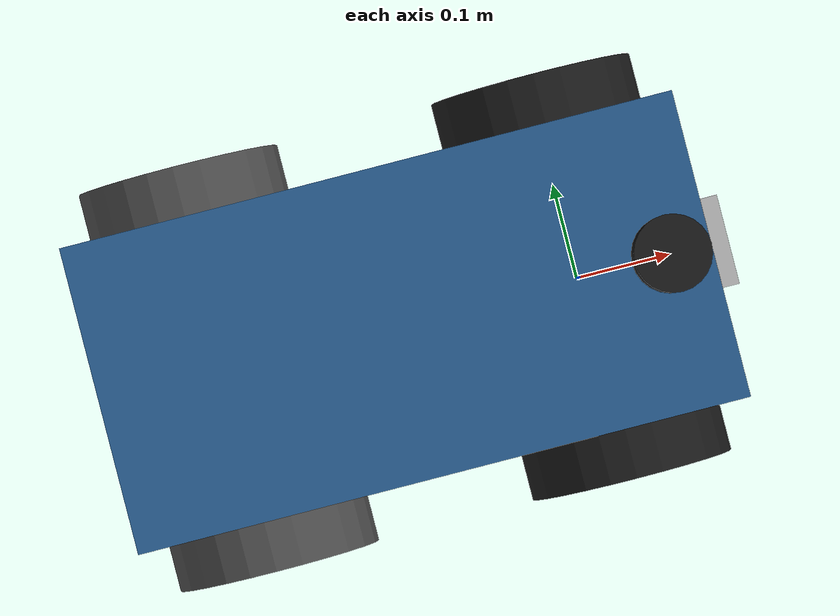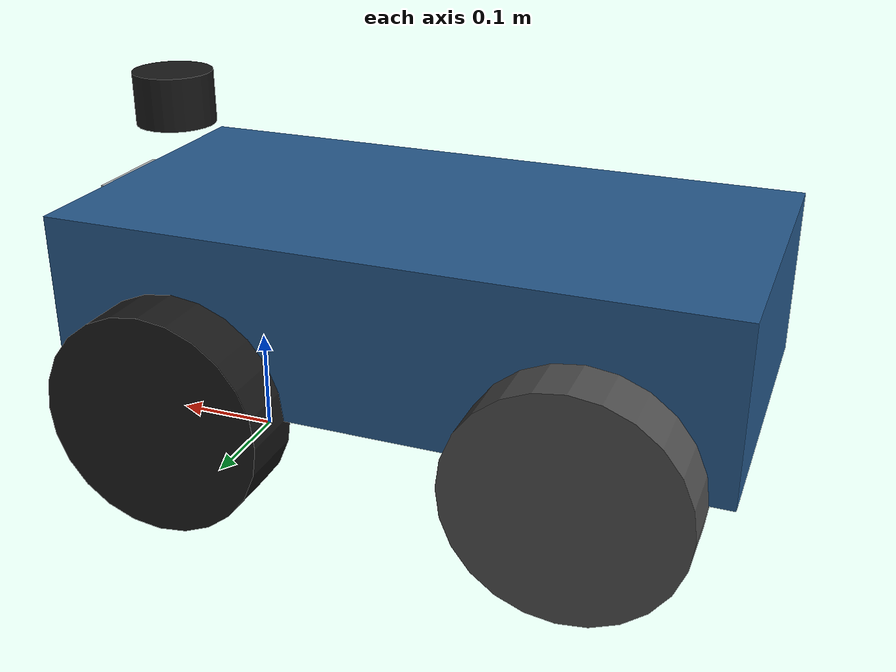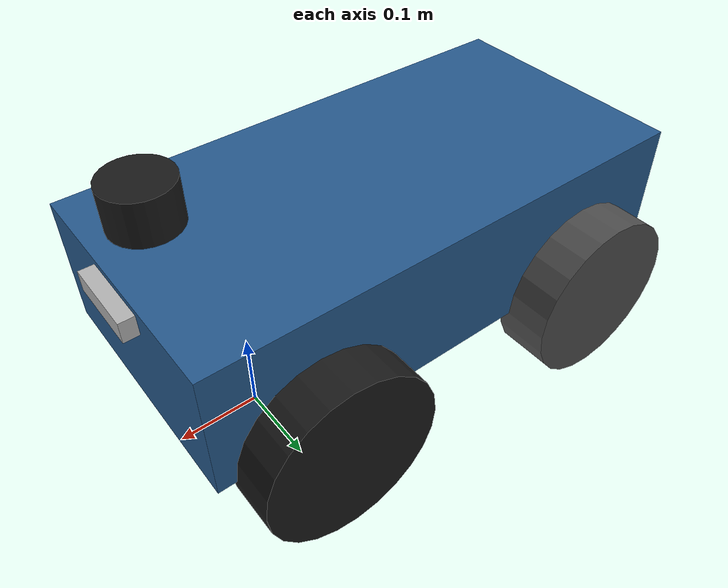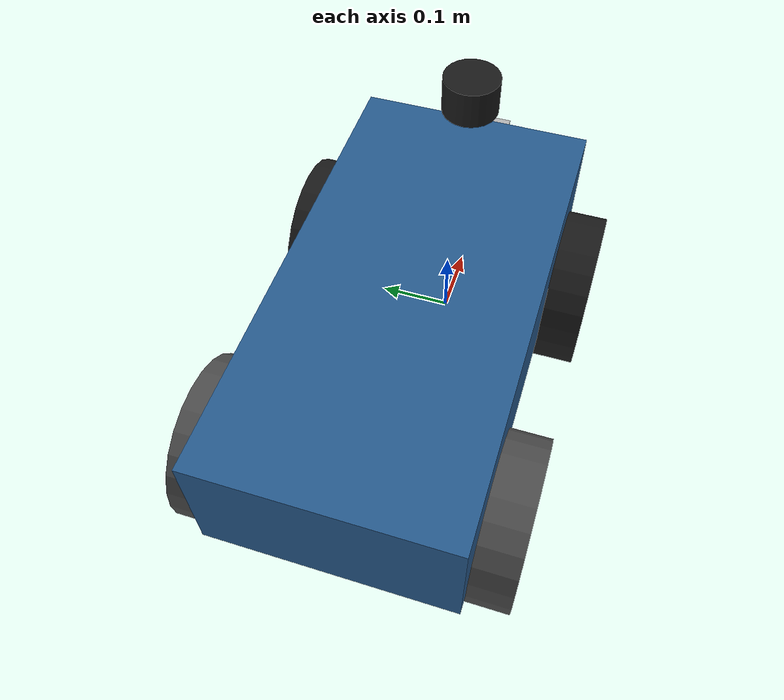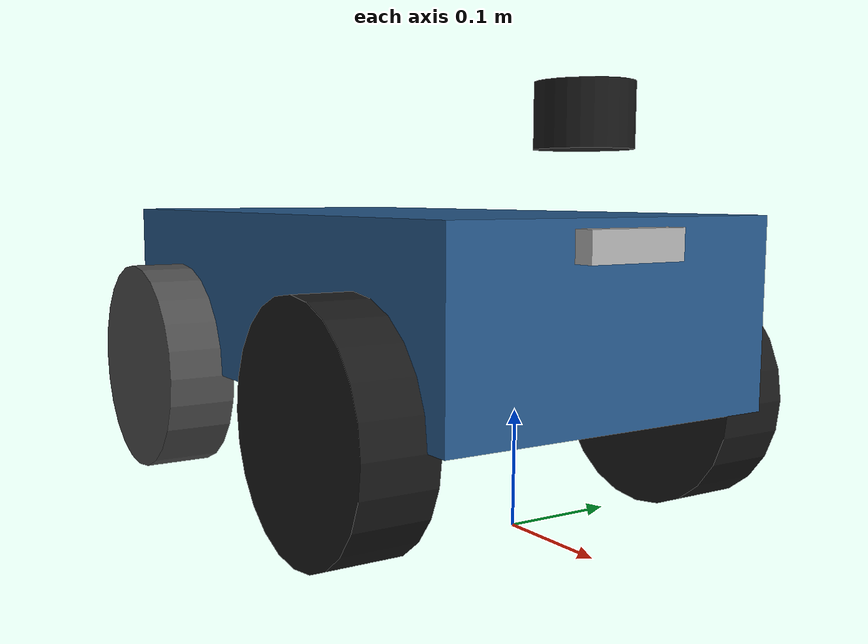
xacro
<?xml version="1.0"?>
<robot xmlns:xacro="http://www.ros.org/wiki/xacro" name="wheeltec_ugv">

  <!-- Xacro Arguments (ADR-0001: Heading defined in software)                   -->
  <xacro:arg name="heading" default="drive_front"/> <!-- "drive_front" or "omni_front" -->

  <!-- Geometry Properties -->
  <xacro:property name="track_width" value="0.350"/>
  <xacro:property name="wheel_radius" value="0.104"/>
  <xacro:property name="wheel_width" value="0.065"/>
  <xacro:property name="wheelbase" value="0.370"/>
  <xacro:property name="chassis_length" value="0.620"/>
  <xacro:property name="chassis_width" value="0.310"/>
  <xacro:property name="chassis_height" value="0.160"/>
  <xacro:property name="ground_clearance" value="0.050"/>

  <!-- Heading orientation angle (ADR-0001) -->
  <xacro:if value="${'$(arg heading)' == 'omni_front'}">
    <xacro:property name="heading_yaw" value="${pi}"/>
  </xacro:if>
  <xacro:unless value="${'$(arg heading)' == 'omni_front'}">
    <xacro:property name="heading_yaw" value="0.0"/>
  </xacro:unless>

  <!-- Base footprint: projected on ground plane -->
  <link name="base_footprint"/>

  <!-- base_link: fixed at the midpoint of the drive axle (ADR-0001) -->
  <joint name="base_footprint_joint" type="fixed">
    <parent link="base_footprint"/>
    <child link="base_link"/>
    <origin xyz="0 0 ${wheel_radius}" rpy="0 0 0"/>
  </joint>

  <link name="base_link"/>

  <!-- chassis_link: represents physical chassis body, rotated by heading_yaw relative to base_link -->
  <joint name="chassis_joint" type="fixed">
    <parent link="base_link"/>
    <child link="chassis_link"/>
    <origin xyz="0 0 0" rpy="0 0 ${heading_yaw}"/>
  </joint>

  <link name="chassis_link">
    <visual>
      <origin xyz="${-wheelbase * 0.5} 0 ${chassis_height * 0.5}" rpy="0 0 0"/>
      <geometry>
        <box size="${chassis_length} ${chassis_width} ${chassis_height}"/>
      </geometry>
      <material name="chassis_mat">
        <color rgba="0.15 0.35 0.55 0.9"/>
      </material>
    </visual>
    <collision>
      <origin xyz="${-wheelbase * 0.5} 0 ${chassis_height * 0.5}" rpy="0 0 0"/>
      <geometry>
        <box size="${chassis_length} ${chassis_width} ${chassis_height}"/>
      </geometry>
    </collision>
    <inertial>
      <origin xyz="${-wheelbase * 0.5} 0 ${chassis_height * 0.5}" rpy="0 0 0"/>
      <mass value="12.0"/>
      <inertia ixx="0.12" ixy="0.0" ixz="0.0" iyy="0.42" iyz="0.0" izz="0.48"/>
    </inertial>
  </link>

  <!-- Driven Wheels (fixed at drive end of chassis_link)                        -->
  <xacro:macro name="driven_wheel" params="prefix y_offset">
    <link name="${prefix}_wheel_link">
      <visual>
        <origin xyz="0 0 0" rpy="${pi/2} 0 0"/>
        <geometry>
          <cylinder radius="${wheel_radius}" length="${wheel_width}"/>
        </geometry>
        <material name="tire_mat">
          <color rgba="0.1 0.1 0.1 1.0"/>
        </material>
      </visual>
      <collision>
        <origin xyz="0 0 0" rpy="${pi/2} 0 0"/>
        <geometry>
          <cylinder radius="${wheel_radius}" length="${wheel_width}"/>
        </geometry>
      </collision>
      <inertial>
        <origin xyz="0 0 0" rpy="${pi/2} 0 0"/>
        <mass value="1.5"/>
        <inertia ixx="0.0045" ixy="0.0" ixz="0.0" iyy="0.0045" iyz="0.0" izz="0.008"/>
      </inertial>
    </link>

    <joint name="${prefix}_wheel_joint" type="continuous">
      <parent link="chassis_link"/>
      <child link="${prefix}_wheel_link"/>
      <origin xyz="0 ${y_offset} 0" rpy="0 0 0"/>
      <axis xyz="0 1 0"/>
    </joint>
  </xacro:macro>

  <xacro:driven_wheel prefix="drive_left" y_offset="${track_width * 0.5}"/>
  <xacro:driven_wheel prefix="drive_right" y_offset="${-track_width * 0.5}"/>

  <!-- Passive Omni Wheels (fixed at omni end of chassis_link)                   -->
  <xacro:macro name="omni_wheel" params="prefix y_offset">
    <link name="${prefix}_omni_link">
      <visual>
        <origin xyz="0 0 0" rpy="${pi/2} 0 0"/>
        <geometry>
          <cylinder radius="${wheel_radius}" length="${wheel_width}"/>
        </geometry>
        <material name="omni_mat">
          <color rgba="0.3 0.3 0.3 1.0"/>
        </material>
      </visual>
      <collision>
        <origin xyz="0 0 0" rpy="${pi/2} 0 0"/>
        <geometry>
          <cylinder radius="${wheel_radius}" length="${wheel_width}"/>
        </geometry>
      </collision>
      <inertial>
        <origin xyz="0 0 0" rpy="${pi/2} 0 0"/>
        <mass value="1.0"/>
        <inertia ixx="0.003" ixy="0.0" ixz="0.0" iyy="0.003" iyz="0.0" izz="0.005"/>
      </inertial>
    </link>

    <joint name="${prefix}_omni_joint" type="continuous">
      <parent link="chassis_link"/>
      <child link="${prefix}_omni_link"/>
      <origin xyz="${-wheelbase} ${y_offset} 0" rpy="0 0 0"/>
      <axis xyz="0 1 0"/>
    </joint>
  </xacro:macro>

  <xacro:omni_wheel prefix="omni_left" y_offset="${track_width * 0.5}"/>
  <xacro:omni_wheel prefix="omni_right" y_offset="${-track_width * 0.5}"/>

  <!-- Sensor Mounts (ADR-0001: Sensor mounts at both ends)                      -->
  <link name="sensor_mount_drive_end"/>
  <joint name="sensor_mount_drive_end_joint" type="fixed">
    <parent link="chassis_link"/>
    <child link="sensor_mount_drive_end"/>
    <origin xyz="0.08 0 ${chassis_height}" rpy="0 0 0"/>
  </joint>

  <link name="sensor_mount_omni_end"/>
  <joint name="sensor_mount_omni_end_joint" type="fixed">
    <parent link="chassis_link"/>
    <child link="sensor_mount_omni_end"/>
    <origin xyz="${-wheelbase - 0.08} 0 ${chassis_height}" rpy="0 0 ${pi}"/>
  </joint>

  <!-- Active Sensor Mount: Front-facing mount determined by heading parameter -->
  <link name="sensor_mount_active"/>
  <joint name="sensor_mount_active_joint" type="fixed">
    <parent link="chassis_link"/>
    <child link="sensor_mount_active"/>
    <xacro:if value="${'$(arg heading)' == 'omni_front'}">
      <origin xyz="${-wheelbase - 0.08} 0 ${chassis_height}" rpy="0 0 ${pi}"/>
    </xacro:if>
    <xacro:unless value="${'$(arg heading)' == 'omni_front'}">
      <origin xyz="0.08 0 ${chassis_height}" rpy="0 0 0"/>
    </xacro:unless>
  </joint>

  <!-- 2D LiDAR attached to the active sensor mount -->
  <link name="laser_link">
    <visual>
      <origin xyz="0 0 0.025" rpy="0 0 0"/>
      <geometry>
        <cylinder radius="0.038" length="0.05"/>
      </geometry>
      <material name="laser_mat">
        <color rgba="0.1 0.1 0.1 1.0"/>
      </material>
    </visual>
  </link>
  <joint name="laser_joint" type="fixed">
    <parent link="sensor_mount_active"/>
    <child link="laser_link"/>
    <origin xyz="0 0 0.05" rpy="0 0 0"/>
  </joint>

  <!-- Camera attached to the active sensor mount -->
  <link name="camera_link">
    <visual>
      <origin xyz="0 0 0" rpy="0 0 0"/>
      <geometry>
        <box size="0.025 0.09 0.025"/>
      </geometry>
      <material name="camera_mat">
        <color rgba="0.7 0.7 0.7 1.0"/>
      </material>
    </visual>
  </link>
  <joint name="camera_joint" type="fixed">
    <parent link="sensor_mount_active"/>
    <child link="camera_link"/>
    <origin xyz="0.05 0 -0.02" rpy="0 0 0"/>
  </joint>

  <!-- IMU: Fixed to C50C controller board inside chassis -->
  <link name="imu_link"/>
  <joint name="imu_joint" type="fixed">
    <parent link="base_link"/>
    <child link="imu_link"/>
    <origin xyz="0 0 0.05" rpy="0 0 0"/>
  </joint>

</robot>
